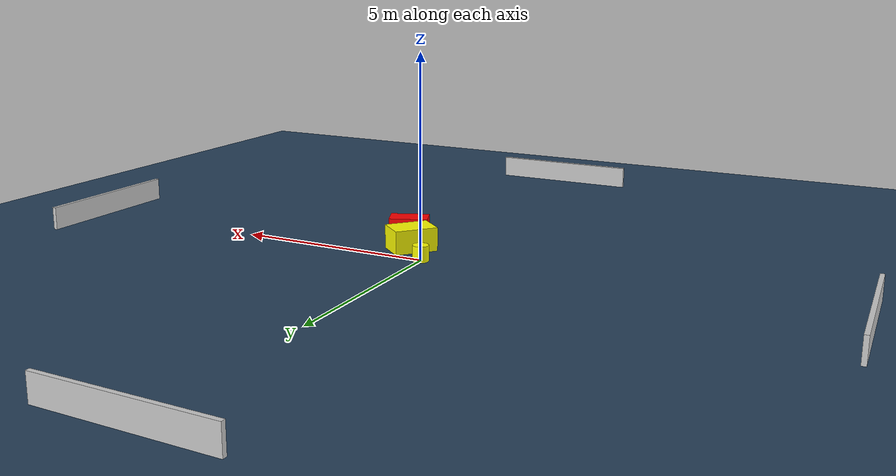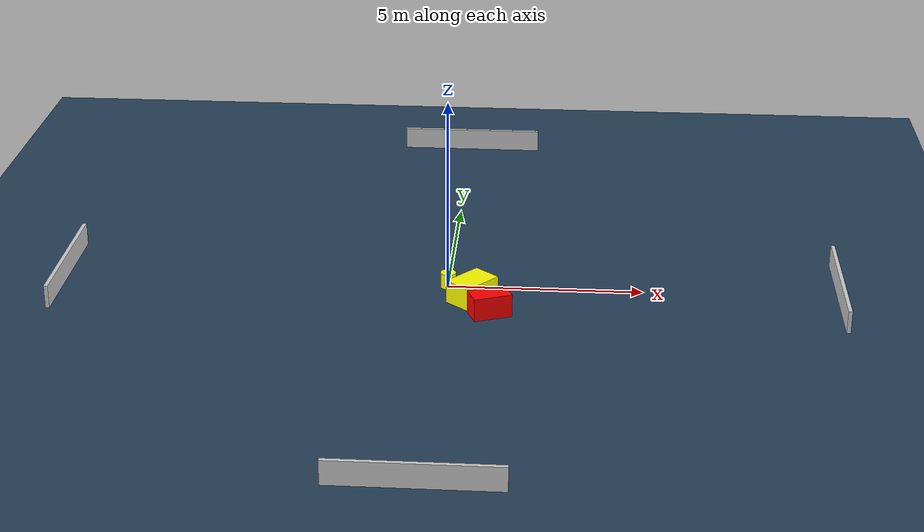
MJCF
<?xml version="1.0" ?>
<mujoco model="generated_environment">
  <option timestep="0.01" integrator="RK4" cone="elliptic"/>
  <default>
    <geom density="1"/>
  </default>
  <asset>
    <texture builtin="gradient" height="3072" name="skybox" rgb1="0.3 0.5 0.7" rgb2="0 0 0" type="skybox" width="512"/>
    <texture builtin="checker" height="300" name="groundplane" rgb1="0.2 0.3 0.4" rgb2="0.1 0.2 0.3" type="2d" width="300"/>
    <material name="groundplane" reflectance="0.2" texrepeat="5 5" texture="groundplane"/>
  </asset>
  <worldbody>
    <light dir="0 0 -1" directional="true" pos="0 0 1.5"/>
    <geom condim="3" friction="0.5 0.005 0.001" material="groundplane" name="floor" pos="0 0 0" size="0 0 0.05" type="plane"/>
    <body name="walls">
      <geom name="wall_1" condim="4" pos="-10.0 0.0 0.3" rgba="0.800000011920929 0.800000011920929 0.800000011920929 1.0" size="0.05 2.0 0.3" type="box"/>
      <geom name="wall_2" condim="4" pos="10.0 0.0 0.3" rgba="0.800000011920929 0.800000011920929 0.800000011920929 1.0" size="0.05 2.0 0.3" type="box"/>
      <geom name="wall_3" condim="4" pos="0.0 -10.0 0.3" rgba="0.800000011920929 0.800000011920929 0.800000011920929 1.0" size="2.0 0.05 0.3" type="box"/>
      <geom name="wall_4" condim="4" pos="0.0 10.0 0.3" rgba="0.800000011920929 0.800000011920929 0.800000011920929 1.0" size="2.0 0.05 0.3" type="box"/>
    </body>
    <body name="robot">
      <joint name="joint_x" type="slide" pos="0 0 0" axis="1 0 0"/>
      <joint name="joint_y" type="slide" pos="0 0 0" axis="0 1 0"/>
      <geom name="robot" type="cylinder" pos="0.0 0.0 0.2" size="0.2 0.2 0.0" mass="5.0" friction="1.0 0.005 0.0001" condim="4" rgba="1.0 1.0 0.0 1.0"/>
    </body>
    <body name="obstacle_1_movable">
      <geom name="obstacle_1_movable" condim="4" pos="0.6650416065888919 -0.7680813823638212 0.3" euler="0 0 229.23039049331445" friction="0.0 0.005 0.001" rgba="1.0 1.0 0.0 1.0" size="0.5527569421541088 0.3793017912290434 0.3" type="box" mass="0.1"/>
      <joint type="free"/>
    </body>
    <body name="obstacle_2_static">
      <geom name="obstacle_2_static" condim="4" pos="1.1546455594063227 -1.5709714682344456 0.3" euler="0 0 111.49955593623645" friction="0.0 0.005 0.001" rgba="1.0 0.0 0.0 1.0" size="0.2866667028040866 0.4976479356985675 0.3" type="box"/>
    </body>
  </worldbody>
  <actuator>
    <motor name="actuator_x" joint="joint_x" gear="1" ctrlrange="-1 1"/>
    <motor name="actuator_y" joint="joint_y" gear="1" ctrlrange="-1 1"/>
  </actuator>
</mujoco>
